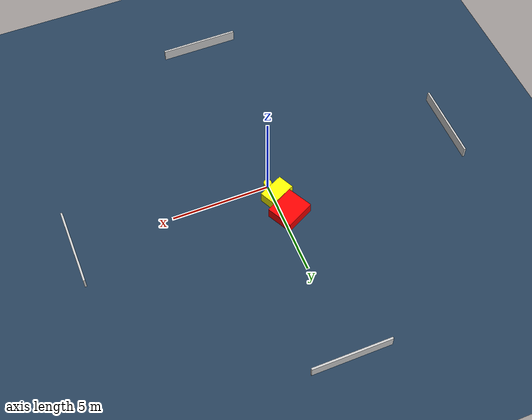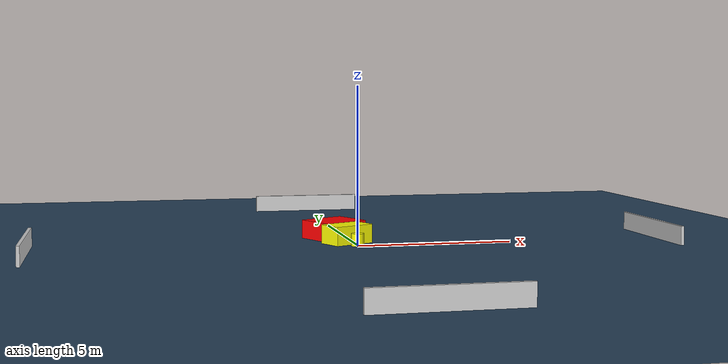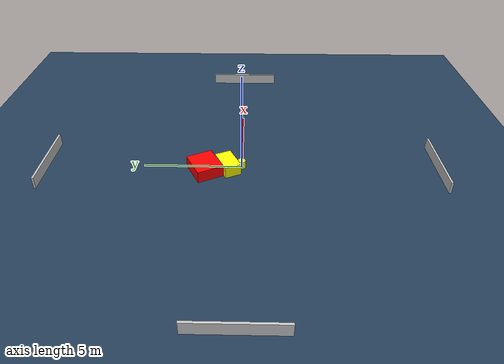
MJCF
<?xml version="1.0" ?>
<mujoco model="generated_environment">
  <option timestep="0.01" integrator="RK4" cone="elliptic"/>
  <default>
    <geom density="1"/>
  </default>
  <asset>
    <texture builtin="gradient" height="3072" name="skybox" rgb1="0.3 0.5 0.7" rgb2="0 0 0" type="skybox" width="512"/>
    <texture builtin="checker" height="300" name="groundplane" rgb1="0.2 0.3 0.4" rgb2="0.1 0.2 0.3" type="2d" width="300"/>
    <material name="groundplane" reflectance="0.2" texrepeat="5 5" texture="groundplane"/>
  </asset>
  <worldbody>
    <light dir="0 0 -1" directional="true" pos="0 0 1.5"/>
    <geom condim="3" friction="0.5 0.005 0.001" material="groundplane" name="floor" pos="0 0 0" size="0 0 0.05" type="plane"/>
    <body name="walls">
      <geom name="wall_1" condim="4" pos="-10.0 0.0 0.3" rgba="0.800000011920929 0.800000011920929 0.800000011920929 1.0" size="0.05 2.0 0.3" type="box"/>
      <geom name="wall_2" condim="4" pos="10.0 0.0 0.3" rgba="0.800000011920929 0.800000011920929 0.800000011920929 1.0" size="0.05 2.0 0.3" type="box"/>
      <geom name="wall_3" condim="4" pos="0.0 -10.0 0.3" rgba="0.800000011920929 0.800000011920929 0.800000011920929 1.0" size="2.0 0.05 0.3" type="box"/>
      <geom name="wall_4" condim="4" pos="0.0 10.0 0.3" rgba="0.800000011920929 0.800000011920929 0.800000011920929 1.0" size="2.0 0.05 0.3" type="box"/>
    </body>
    <body name="robot">
      <joint name="joint_x" type="slide" pos="0 0 0" axis="1 0 0"/>
      <joint name="joint_y" type="slide" pos="0 0 0" axis="0 1 0"/>
      <geom name="robot" type="cylinder" pos="0.0 0.0 0.2" size="0.2 0.2 0.0" mass="5.0" friction="1.0 0.005 0.0001" condim="4" rgba="1.0 1.0 0.0 1.0"/>
    </body>
    <body name="obstacle_1_movable">
      <geom name="obstacle_1_movable" condim="4" pos="-0.2004513767153216 0.6982064980358005 0.3" euler="0 0 205.41695589250816" friction="0.0 0.005 0.001" rgba="1.0 1.0 0.0 1.0" size="0.69000460193635 0.4269358596747187 0.3" type="box" mass="0.1"/>
      <joint type="free"/>
    </body>
    <body name="obstacle_2_static">
      <geom name="obstacle_2_static" condim="4" pos="-0.40428143325783544 1.8566660655177818 0.3" euler="0 0 26.871499229383332" friction="0.0 0.005 0.001" rgba="1.0 0.0 0.0 1.0" size="0.7870848755672675 0.6849150942084612 0.3" type="box"/>
    </body>
  </worldbody>
  <actuator>
    <motor name="actuator_x" joint="joint_x" gear="1" ctrlrange="-1 1"/>
    <motor name="actuator_y" joint="joint_y" gear="1" ctrlrange="-1 1"/>
  </actuator>
</mujoco>
